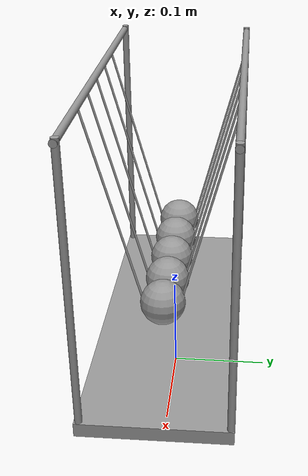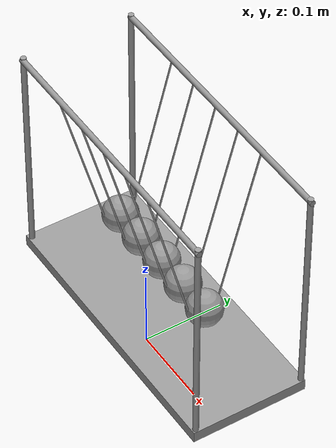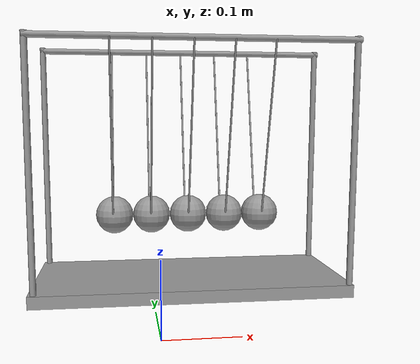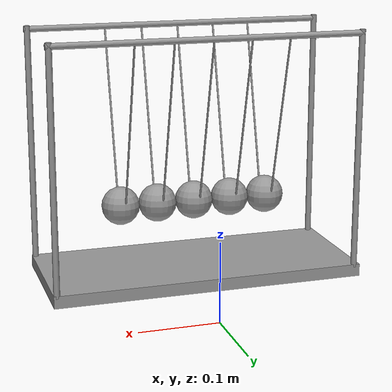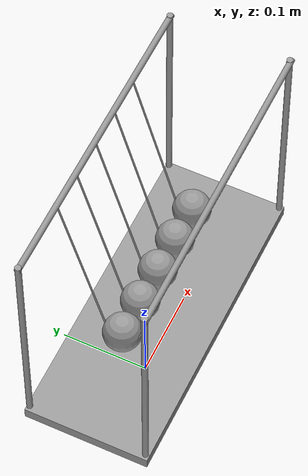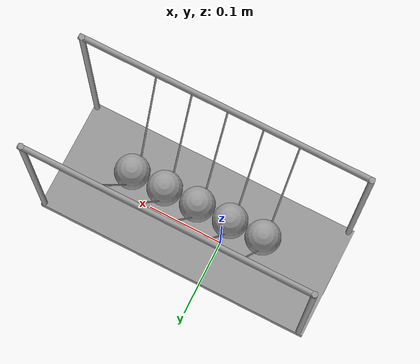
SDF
<?xml version='1.0'?>
<sdf version='1.6'>
  <model name='newtons_craddle_4'>
    <link name='link_0'>
      <inertial>
        <mass>5.36394</mass>
        <inertia>
          <ixx>0.00922062</ixx>
          <ixy>0</ixy>
          <ixz>0</ixz>
          <iyy>0.0559637</iyy>
          <iyz>0</iyz>
          <izz>0.06501</izz>
        </inertia>
        <pose frame=''>0 0 0 0 -0 0</pose>
      </inertial>
      <pose frame=''>0.032676 0.000288 0.076563 0 -0 0</pose>
      <gravity>1</gravity>
      <self_collide>1</self_collide>
      <kinematic>0</kinematic>
      <enable_wind>0</enable_wind>
      <visual name='ModelPreview_27::link_0::visual_2'>
        <pose frame=''>-0.170659 -0.067 0.14 0 0 -7.4e-05</pose>
        <geometry>
          <cylinder>
            <radius>0.00344767</radius>
            <length>0.27197</length>
          </cylinder>
        </geometry>
        <material>
          <lighting>1</lighting>
          <script>
            <uri>file://media/materials/scripts/gazebo.material</uri>
            <name>Gazebo/Grey</name>
          </script>
          <shader type='vertex'>
            <normal_map>__default__</normal_map>
          </shader>
          <ambient>0.3 0.3 0.3 1</ambient>
          <diffuse>0.7 0.7 0.7 1</diffuse>
          <specular>0.01 0.01 0.01 1</specular>
          <emissive>0 0 0 1</emissive>
        </material>
        <transparency>0</transparency>
        <cast_shadows>1</cast_shadows>
      </visual>
      <visual name='visual_0'>
        <pose frame=''>-0.170659 0.068338 0.14 0 0 -7.4e-05</pose>
        <geometry>
          <cylinder>
            <radius>0.00344767</radius>
            <length>0.27197</length>
          </cylinder>
        </geometry>
        <material>
          <lighting>1</lighting>
          <script>
            <uri>file://media/materials/scripts/gazebo.material</uri>
            <name>Gazebo/Grey</name>
          </script>
          <shader type='vertex'>
            <normal_map>__default__</normal_map>
          </shader>
          <ambient>0.3 0.3 0.3 1</ambient>
          <diffuse>0.7 0.7 0.7 1</diffuse>
          <specular>0.01 0.01 0.01 1</specular>
          <emissive>0 0 0 1</emissive>
        </material>
        <transparency>0</transparency>
        <cast_shadows>1</cast_shadows>
      </visual>
      <visual name='ModelPreview_27::link_0::visual_3'>
        <pose frame=''>0.173 -0.067 0.14 0 0 -7.4e-05</pose>
        <geometry>
          <cylinder>
            <radius>0.00344767</radius>
            <length>0.27197</length>
          </cylinder>
        </geometry>
        <material>
          <lighting>1</lighting>
          <script>
            <uri>file://media/materials/scripts/gazebo.material</uri>
            <name>Gazebo/Grey</name>
          </script>
          <shader type='vertex'>
            <normal_map>__default__</normal_map>
          </shader>
          <ambient>0.3 0.3 0.3 1</ambient>
          <diffuse>0.7 0.7 0.7 1</diffuse>
          <specular>0.01 0.01 0.01 1</specular>
          <emissive>0 0 0 1</emissive>
        </material>
        <transparency>0</transparency>
        <cast_shadows>1</cast_shadows>
      </visual>
      <visual name='ModelPreview_27::link_0::visual_4'>
        <pose frame=''>0.173 0.068338 0.14 0 0 -7.4e-05</pose>
        <geometry>
          <cylinder>
            <radius>0.00344767</radius>
            <length>0.27197</length>
          </cylinder>
        </geometry>
        <material>
          <lighting>1</lighting>
          <script>
            <uri>file://media/materials/scripts/gazebo.material</uri>
            <name>Gazebo/Grey</name>
          </script>
          <shader type='vertex'>
            <normal_map>__default__</normal_map>
          </shader>
          <ambient>0.3 0.3 0.3 1</ambient>
          <diffuse>0.7 0.7 0.7 1</diffuse>
          <specular>0.01 0.01 0.01 1</specular>
          <emissive>0 0 0 1</emissive>
        </material>
        <transparency>0</transparency>
        <cast_shadows>1</cast_shadows>
      </visual>
      <visual name='visual_4794398'>
        <pose frame=''>0.002 -0.067749 0.272068 2.4961 1.57079 2.49587</pose>
        <geometry>
          <cylinder>
            <radius>0.00344767</radius>
            <length>0.349533</length>
          </cylinder>
        </geometry>
        <material>
          <lighting>1</lighting>
          <script>
            <uri>file://media/materials/scripts/gazebo.material</uri>
            <name>Gazebo/Grey</name>
          </script>
          <shader type='pixel'>
            <normal_map>__default__</normal_map>
          </shader>
          <ambient>0.3 0.3 0.3 1</ambient>
          <diffuse>0.7 0.7 0.7 1</diffuse>
          <specular>0.01 0.01 0.01 1</specular>
          <emissive>0 0 0 1</emissive>
        </material>
        <transparency>0</transparency>
        <cast_shadows>1</cast_shadows>
      </visual>
      <visual name='visual'>
        <pose frame=''>0 0 0 0 -0 0</pose>
        <geometry>
          <box>
            <size>0.353565 0.142944 0.013965</size>
          </box>
        </geometry>
        <material>
          <lighting>1</lighting>
          <script>
            <uri>file://media/materials/scripts/gazebo.material</uri>
            <name>Gazebo/Grey</name>
          </script>
          <shader type='vertex'>
            <normal_map>__default__</normal_map>
          </shader>
          <emissive>0 0 0 1</emissive>
          <ambient>0.3 0.3 0.3 1</ambient>
          <diffuse>0.7 0.7 0.7 1</diffuse>
          <specular>0.01 0.01 0.01 1</specular>
        </material>
        <transparency>0</transparency>
        <cast_shadows>1</cast_shadows>
      </visual>
      <visual name='ModelPreview_30::link_0::visual_7'>
        <pose frame=''>0.002 0.068338 0.272068 2.4961 1.57079 2.49587</pose>
        <geometry>
          <cylinder>
            <radius>0.003448</radius>
            <length>0.349533</length>
          </cylinder>
        </geometry>
        <material>
          <lighting>1</lighting>
          <script>
            <uri>file://media/materials/scripts/gazebo.material</uri>
            <name>Gazebo/Grey</name>
          </script>
          <shader type='vertex'>
            <normal_map>__default__</normal_map>
          </shader>
          <emissive>0 0 0 1</emissive>
          <ambient>0.3 0.3 0.3 1</ambient>
          <diffuse>0.7 0.7 0.7 1</diffuse>
          <specular>0.01 0.01 0.01 1</specular>
        </material>
        <transparency>0</transparency>
        <cast_shadows>1</cast_shadows>
      </visual>
      <collision name='collision'>
        <laser_retro>0</laser_retro>
        <max_contacts>10</max_contacts>
        <pose frame=''>0 0 0 0 -0 0</pose>
        <geometry>
          <box>
            <size>0.353565 0.142944 0.013965</size>
          </box>
        </geometry>
        <surface>
          <friction>
            <ode>
              <mu>1</mu>
              <mu2>1</mu2>
              <fdir1>0 0 0</fdir1>
              <slip1>0</slip1>
              <slip2>0</slip2>
            </ode>
            <torsional>
              <coefficient>1</coefficient>
              <patch_radius>0</patch_radius>
              <surface_radius>0</surface_radius>
              <use_patch_radius>1</use_patch_radius>
              <ode>
                <slip>0</slip>
              </ode>
            </torsional>
          </friction>
          <bounce>
            <restitution_coefficient>0</restitution_coefficient>
            <threshold>1e+06</threshold>
          </bounce>
          <contact>
            <collide_without_contact>0</collide_without_contact>
            <collide_without_contact_bitmask>1</collide_without_contact_bitmask>
            <collide_bitmask>1</collide_bitmask>
            <ode>
              <soft_cfm>0</soft_cfm>
              <soft_erp>0.2</soft_erp>
              <kp>1e+13</kp>
              <kd>1</kd>
              <max_vel>0.01</max_vel>
              <min_depth>0</min_depth>
            </ode>
            <bullet>
              <split_impulse>1</split_impulse>
              <split_impulse_penetration_threshold>-0.01</split_impulse_penetration_threshold>
              <soft_cfm>0</soft_cfm>
              <soft_erp>0.2</soft_erp>
              <kp>1e+13</kp>
              <kd>1</kd>
            </bullet>
          </contact>
        </surface>
      </collision>
    </link>
    <link name='link_2'>
      <inertial>
        <mass>0.313289</mass>
        <inertia>
          <ixx>5.755e-05</ixx>
          <ixy>0</ixy>
          <ixz>0</ixz>
          <iyy>5.755e-05</iyy>
          <iyz>0</iyz>
          <izz>5.755e-05</izz>
        </inertia>
        <pose frame=''>0 0 0 0 -0 0</pose>
      </inertial>
      <pose frame=''>0.032676 0.000288 0.156014 0 -0 0</pose>
      <gravity>1</gravity>
      <self_collide>1</self_collide>
      <kinematic>0</kinematic>
      <enable_wind>0</enable_wind>
      <visual name='visual'>
        <pose frame=''>0 0 0 0 -0 0</pose>
        <geometry>
          <sphere>
            <radius>0.0214304</radius>
          </sphere>
        </geometry>
        <material>
          <lighting>1</lighting>
          <script>
            <uri>file://media/materials/scripts/gazebo.material</uri>
            <name>Gazebo/Grey</name>
          </script>
          <shader type='vertex'>
            <normal_map>__default__</normal_map>
          </shader>
          <emissive>0 0 0 1</emissive>
        </material>
        <transparency>0</transparency>
        <cast_shadows>1</cast_shadows>
      </visual>
      <visual name='visual_0'>
        <pose frame=''>-0.001604 -0.042749 0.08966 -0.262327 0 3.1413</pose>
        <geometry>
          <cylinder>
            <radius>0.0010189</radius>
            <length>0.212053</length>
          </cylinder>
        </geometry>
        <material>
          <lighting>1</lighting>
          <script>
            <uri>file://media/materials/scripts/gazebo.material</uri>
            <name>Gazebo/Grey</name>
          </script>
          <shader type='pixel'>
            <normal_map>__default__</normal_map>
          </shader>
          <ambient>0.3 0.3 0.3 1</ambient>
          <diffuse>0.7 0.7 0.7 1</diffuse>
          <specular>0.01 0.01 0.01 1</specular>
          <emissive>0 0 0 1</emissive>
        </material>
        <transparency>0</transparency>
        <cast_shadows>1</cast_shadows>
      </visual>
      <visual name='ModelPreview_33::link_2_clone_2::visual_2'>
        <pose frame=''>-0.001604 0.041 0.08966 0.262327 -0 3.1413</pose>
        <geometry>
          <cylinder>
            <radius>0.0010189</radius>
            <length>0.212053</length>
          </cylinder>
        </geometry>
        <material>
          <lighting>1</lighting>
          <script>
            <uri>file://media/materials/scripts/gazebo.material</uri>
            <name>Gazebo/Grey</name>
          </script>
          <shader type='pixel'>
            <normal_map>__default__</normal_map>
          </shader>
          <ambient>0.3 0.3 0.3 1</ambient>
          <diffuse>0.7 0.7 0.7 1</diffuse>
          <specular>0.01 0.01 0.01 1</specular>
          <emissive>0 0 0 1</emissive>
        </material>
        <transparency>0</transparency>
        <cast_shadows>1</cast_shadows>
      </visual>
      <collision name='collision'>
        <laser_retro>0</laser_retro>
        <max_contacts>10</max_contacts>
        <pose frame=''>0 0 0 0 -0 0</pose>
        <geometry>
          <sphere>
            <radius>0.02143</radius>
          </sphere>
        </geometry>
        <surface>
          <friction>
            <ode>
              <mu>1</mu>
              <mu2>1</mu2>
              <fdir1>0 0 0</fdir1>
              <slip1>0</slip1>
              <slip2>0</slip2>
            </ode>
            <torsional>
              <coefficient>1</coefficient>
              <patch_radius>0</patch_radius>
              <surface_radius>0</surface_radius>
              <use_patch_radius>1</use_patch_radius>
              <ode>
                <slip>0</slip>
              </ode>
            </torsional>
          </friction>
          <bounce>
            <restitution_coefficient>1</restitution_coefficient>
            <threshold>0</threshold>
          </bounce>
          <contact>
            <collide_without_contact>0</collide_without_contact>
            <collide_without_contact_bitmask>1</collide_without_contact_bitmask>
            <collide_bitmask>1</collide_bitmask>
            <ode>
              <soft_cfm>0</soft_cfm>
              <soft_erp>0.2</soft_erp>
              <kp>1e+13</kp>
              <kd>1</kd>
              <max_vel>100</max_vel>
              <min_depth>0.001</min_depth>
            </ode>
            <bullet>
              <split_impulse>1</split_impulse>
              <split_impulse_penetration_threshold>-0.01</split_impulse_penetration_threshold>
              <soft_cfm>0</soft_cfm>
              <soft_erp>0.2</soft_erp>
              <kp>1e+13</kp>
              <kd>1</kd>
            </bullet>
          </contact>
        </surface>
      </collision>
    </link>
    <link name='link_2_clone'>
      <inertial>
        <mass>0.313289</mass>
        <inertia>
          <ixx>5.755e-05</ixx>
          <ixy>0</ixy>
          <ixz>0</ixz>
          <iyy>5.755e-05</iyy>
          <iyz>0</iyz>
          <izz>5.755e-05</izz>
        </inertia>
        <pose frame=''>0 0 0 0 -0 0</pose>
      </inertial>
      <pose frame=''>-0.010185 0.000288 0.156014 0 -0 0</pose>
      <gravity>1</gravity>
      <self_collide>1</self_collide>
      <kinematic>0</kinematic>
      <enable_wind>0</enable_wind>
      <visual name='visual'>
        <pose frame=''>0 0 0 0 -0 0</pose>
        <geometry>
          <sphere>
            <radius>0.0214304</radius>
          </sphere>
        </geometry>
        <material>
          <lighting>1</lighting>
          <script>
            <uri>file://media/materials/scripts/gazebo.material</uri>
            <name>Gazebo/Grey</name>
          </script>
          <shader type='vertex'>
            <normal_map>__default__</normal_map>
          </shader>
          <emissive>0 0 0 1</emissive>
        </material>
        <transparency>0</transparency>
        <cast_shadows>1</cast_shadows>
      </visual>
      <visual name='visual_0'>
        <pose frame=''>-0.001604 -0.042749 0.08966 -0.262327 0 3.1413</pose>
        <geometry>
          <cylinder>
            <radius>0.0010189</radius>
            <length>0.212053</length>
          </cylinder>
        </geometry>
        <material>
          <lighting>1</lighting>
          <script>
            <uri>file://media/materials/scripts/gazebo.material</uri>
            <name>Gazebo/Grey</name>
          </script>
          <shader type='pixel'>
            <normal_map>__default__</normal_map>
          </shader>
          <ambient>0.3 0.3 0.3 1</ambient>
          <diffuse>0.7 0.7 0.7 1</diffuse>
          <specular>0.01 0.01 0.01 1</specular>
          <emissive>0 0 0 1</emissive>
        </material>
        <transparency>0</transparency>
        <cast_shadows>1</cast_shadows>
      </visual>
      <visual name='ModelPreview_33::link_2_clone_2::visual_2'>
        <pose frame=''>-0.001604 0.041 0.08966 0.262327 -0 3.1413</pose>
        <geometry>
          <cylinder>
            <radius>0.0010189</radius>
            <length>0.212053</length>
          </cylinder>
        </geometry>
        <material>
          <lighting>1</lighting>
          <script>
            <uri>file://media/materials/scripts/gazebo.material</uri>
            <name>Gazebo/Grey</name>
          </script>
          <shader type='pixel'>
            <normal_map>__default__</normal_map>
          </shader>
          <ambient>0.3 0.3 0.3 1</ambient>
          <diffuse>0.7 0.7 0.7 1</diffuse>
          <specular>0.01 0.01 0.01 1</specular>
          <emissive>0 0 0 1</emissive>
        </material>
        <transparency>0</transparency>
        <cast_shadows>1</cast_shadows>
      </visual>
      <collision name='collision'>
        <laser_retro>0</laser_retro>
        <max_contacts>10</max_contacts>
        <pose frame=''>0 0 0 0 -0 0</pose>
        <geometry>
          <sphere>
            <radius>0.02143</radius>
          </sphere>
        </geometry>
        <surface>
          <friction>
            <ode>
              <mu>1</mu>
              <mu2>1</mu2>
              <fdir1>0 0 0</fdir1>
              <slip1>0</slip1>
              <slip2>0</slip2>
            </ode>
            <torsional>
              <coefficient>1</coefficient>
              <patch_radius>0</patch_radius>
              <surface_radius>0</surface_radius>
              <use_patch_radius>1</use_patch_radius>
              <ode>
                <slip>0</slip>
              </ode>
            </torsional>
          </friction>
          <bounce>
            <restitution_coefficient>1</restitution_coefficient>
            <threshold>0</threshold>
          </bounce>
          <contact>
            <collide_without_contact>0</collide_without_contact>
            <collide_without_contact_bitmask>1</collide_without_contact_bitmask>
            <collide_bitmask>1</collide_bitmask>
            <ode>
              <soft_cfm>0</soft_cfm>
              <soft_erp>0.2</soft_erp>
              <kp>1e+13</kp>
              <kd>1</kd>
              <max_vel>100</max_vel>
              <min_depth>0.001</min_depth>
            </ode>
            <bullet>
              <split_impulse>1</split_impulse>
              <split_impulse_penetration_threshold>-0.01</split_impulse_penetration_threshold>
              <soft_cfm>0</soft_cfm>
              <soft_erp>0.2</soft_erp>
              <kp>1e+13</kp>
              <kd>1</kd>
            </bullet>
          </contact>
        </surface>
      </collision>
    </link>
    <link name='link_2_clone_0'>
      <inertial>
        <mass>0.313289</mass>
        <inertia>
          <ixx>5.755e-05</ixx>
          <ixy>0</ixy>
          <ixz>0</ixz>
          <iyy>5.755e-05</iyy>
          <iyz>0</iyz>
          <izz>5.755e-05</izz>
        </inertia>
        <pose frame=''>0 0 0 0 -0 0</pose>
      </inertial>
      <pose frame=''>-0.053046 0.000288 0.156014 0 -0 0</pose>
      <gravity>1</gravity>
      <self_collide>1</self_collide>
      <kinematic>0</kinematic>
      <enable_wind>0</enable_wind>
      <visual name='visual'>
        <pose frame=''>0 0 0 0 -0 0</pose>
        <geometry>
          <sphere>
            <radius>0.0214304</radius>
          </sphere>
        </geometry>
        <material>
          <lighting>1</lighting>
          <script>
            <uri>file://media/materials/scripts/gazebo.material</uri>
            <name>Gazebo/Grey</name>
          </script>
          <shader type='vertex'>
            <normal_map>__default__</normal_map>
          </shader>
          <emissive>0 0 0 1</emissive>
        </material>
        <transparency>0</transparency>
        <cast_shadows>1</cast_shadows>
      </visual>
      <visual name='visual_0'>
        <pose frame=''>-0.001604 -0.042749 0.08966 -0.262327 0 3.1413</pose>
        <geometry>
          <cylinder>
            <radius>0.0010189</radius>
            <length>0.212053</length>
          </cylinder>
        </geometry>
        <material>
          <lighting>1</lighting>
          <script>
            <uri>file://media/materials/scripts/gazebo.material</uri>
            <name>Gazebo/Grey</name>
          </script>
          <shader type='pixel'>
            <normal_map>__default__</normal_map>
          </shader>
          <ambient>0.3 0.3 0.3 1</ambient>
          <diffuse>0.7 0.7 0.7 1</diffuse>
          <specular>0.01 0.01 0.01 1</specular>
          <emissive>0 0 0 1</emissive>
        </material>
        <transparency>0</transparency>
        <cast_shadows>1</cast_shadows>
      </visual>
      <visual name='ModelPreview_33::link_2_clone_2::visual_2'>
        <pose frame=''>-0.001604 0.041 0.08966 0.262327 -0 3.1413</pose>
        <geometry>
          <cylinder>
            <radius>0.0010189</radius>
            <length>0.212053</length>
          </cylinder>
        </geometry>
        <material>
          <lighting>1</lighting>
          <script>
            <uri>file://media/materials/scripts/gazebo.material</uri>
            <name>Gazebo/Grey</name>
          </script>
          <shader type='pixel'>
            <normal_map>__default__</normal_map>
          </shader>
          <ambient>0.3 0.3 0.3 1</ambient>
          <diffuse>0.7 0.7 0.7 1</diffuse>
          <specular>0.01 0.01 0.01 1</specular>
          <emissive>0 0 0 1</emissive>
        </material>
        <transparency>0</transparency>
        <cast_shadows>1</cast_shadows>
      </visual>
      <collision name='collision'>
        <laser_retro>0</laser_retro>
        <max_contacts>10</max_contacts>
        <pose frame=''>0 0 0 0 -0 0</pose>
        <geometry>
          <sphere>
            <radius>0.02143</radius>
          </sphere>
        </geometry>
        <surface>
          <friction>
            <ode>
              <mu>1</mu>
              <mu2>1</mu2>
              <fdir1>0 0 0</fdir1>
              <slip1>0</slip1>
              <slip2>0</slip2>
            </ode>
            <torsional>
              <coefficient>1</coefficient>
              <patch_radius>0</patch_radius>
              <surface_radius>0</surface_radius>
              <use_patch_radius>1</use_patch_radius>
              <ode>
                <slip>0</slip>
              </ode>
            </torsional>
          </friction>
          <bounce>
            <restitution_coefficient>1</restitution_coefficient>
            <threshold>0</threshold>
          </bounce>
          <contact>
            <collide_without_contact>0</collide_without_contact>
            <collide_without_contact_bitmask>1</collide_without_contact_bitmask>
            <collide_bitmask>1</collide_bitmask>
            <ode>
              <soft_cfm>0</soft_cfm>
              <soft_erp>0.2</soft_erp>
              <kp>1e+13</kp>
              <kd>1</kd>
              <max_vel>100</max_vel>
              <min_depth>0.001</min_depth>
            </ode>
            <bullet>
              <split_impulse>1</split_impulse>
              <split_impulse_penetration_threshold>-0.01</split_impulse_penetration_threshold>
              <soft_cfm>0</soft_cfm>
              <soft_erp>0.2</soft_erp>
              <kp>1e+13</kp>
              <kd>1</kd>
            </bullet>
          </contact>
        </surface>
      </collision>
    </link>
    <link name='link_2_clone_1'>
      <inertial>
        <mass>0.313289</mass>
        <inertia>
          <ixx>5.755e-05</ixx>
          <ixy>0</ixy>
          <ixz>0</ixz>
          <iyy>5.755e-05</iyy>
          <iyz>0</iyz>
          <izz>5.755e-05</izz>
        </inertia>
        <pose frame=''>0 0 0 0 -0 0</pose>
      </inertial>
      <pose frame=''>0.075538 0.000285 0.156014 0 0 -7.6e-05</pose>
      <gravity>1</gravity>
      <self_collide>1</self_collide>
      <kinematic>0</kinematic>
      <enable_wind>0</enable_wind>
      <visual name='visual'>
        <pose frame=''>0 0 0 0 -0 0</pose>
        <geometry>
          <sphere>
            <radius>0.0214304</radius>
          </sphere>
        </geometry>
        <material>
          <lighting>1</lighting>
          <script>
            <uri>file://media/materials/scripts/gazebo.material</uri>
            <name>Gazebo/Grey</name>
          </script>
          <shader type='vertex'>
            <normal_map>__default__</normal_map>
          </shader>
          <emissive>0 0 0 1</emissive>
        </material>
        <transparency>0</transparency>
        <cast_shadows>1</cast_shadows>
      </visual>
      <visual name='visual_0'>
        <pose frame=''>-0.001604 -0.042749 0.08966 -0.262327 0 3.1413</pose>
        <geometry>
          <cylinder>
            <radius>0.0010189</radius>
            <length>0.212053</length>
          </cylinder>
        </geometry>
        <material>
          <lighting>1</lighting>
          <script>
            <uri>file://media/materials/scripts/gazebo.material</uri>
            <name>Gazebo/Grey</name>
          </script>
          <shader type='pixel'>
            <normal_map>__default__</normal_map>
          </shader>
          <ambient>0.3 0.3 0.3 1</ambient>
          <diffuse>0.7 0.7 0.7 1</diffuse>
          <specular>0.01 0.01 0.01 1</specular>
          <emissive>0 0 0 1</emissive>
        </material>
        <transparency>0</transparency>
        <cast_shadows>1</cast_shadows>
      </visual>
      <visual name='ModelPreview_33::link_2_clone_2::visual_2'>
        <pose frame=''>-0.001604 0.041 0.08966 0.262327 -0 3.1413</pose>
        <geometry>
          <cylinder>
            <radius>0.0010189</radius>
            <length>0.212053</length>
          </cylinder>
        </geometry>
        <material>
          <lighting>1</lighting>
          <script>
            <uri>file://media/materials/scripts/gazebo.material</uri>
            <name>Gazebo/Grey</name>
          </script>
          <shader type='pixel'>
            <normal_map>__default__</normal_map>
          </shader>
          <ambient>0.3 0.3 0.3 1</ambient>
          <diffuse>0.7 0.7 0.7 1</diffuse>
          <specular>0.01 0.01 0.01 1</specular>
          <emissive>0 0 0 1</emissive>
        </material>
        <transparency>0</transparency>
        <cast_shadows>1</cast_shadows>
      </visual>
      <collision name='collision'>
        <laser_retro>0</laser_retro>
        <max_contacts>10</max_contacts>
        <pose frame=''>0 0 0 0 -0 0</pose>
        <geometry>
          <sphere>
            <radius>0.02143</radius>
          </sphere>
        </geometry>
        <surface>
          <friction>
            <ode>
              <mu>1</mu>
              <mu2>1</mu2>
              <fdir1>0 0 0</fdir1>
              <slip1>0</slip1>
              <slip2>0</slip2>
            </ode>
            <torsional>
              <coefficient>1</coefficient>
              <patch_radius>0</patch_radius>
              <surface_radius>0</surface_radius>
              <use_patch_radius>1</use_patch_radius>
              <ode>
                <slip>0</slip>
              </ode>
            </torsional>
          </friction>
          <bounce>
            <restitution_coefficient>1</restitution_coefficient>
            <threshold>0</threshold>
          </bounce>
          <contact>
            <collide_without_contact>0</collide_without_contact>
            <collide_without_contact_bitmask>1</collide_without_contact_bitmask>
            <collide_bitmask>1</collide_bitmask>
            <ode>
              <soft_cfm>0</soft_cfm>
              <soft_erp>0.2</soft_erp>
              <kp>1e+13</kp>
              <kd>1</kd>
              <max_vel>100</max_vel>
              <min_depth>0.001</min_depth>
            </ode>
            <bullet>
              <split_impulse>1</split_impulse>
              <split_impulse_penetration_threshold>-0.01</split_impulse_penetration_threshold>
              <soft_cfm>0</soft_cfm>
              <soft_erp>0.2</soft_erp>
              <kp>1e+13</kp>
              <kd>1</kd>
            </bullet>
          </contact>
        </surface>
      </collision>
    </link>
    <link name='link_2_clone_2'>
      <inertial>
        <mass>0.313289</mass>
        <inertia>
          <ixx>5.755e-05</ixx>
          <ixy>0</ixy>
          <ixz>0</ixz>
          <iyy>5.755e-05</iyy>
          <iyz>0</iyz>
          <izz>5.755e-05</izz>
        </inertia>
        <pose frame=''>0 0 0 0 -0 0</pose>
      </inertial>
      <pose frame=''>0.118399 0.000281 0.156014 0 0 -7.6e-05</pose>
      <gravity>1</gravity>
      <self_collide>1</self_collide>
      <kinematic>0</kinematic>
      <enable_wind>0</enable_wind>
      <visual name='visual'>
        <pose frame=''>0 0 0 0 -0 0</pose>
        <geometry>
          <sphere>
            <radius>0.0214304</radius>
          </sphere>
        </geometry>
        <material>
          <lighting>1</lighting>
          <script>
            <uri>file://media/materials/scripts/gazebo.material</uri>
            <name>Gazebo/Grey</name>
          </script>
          <shader type='vertex'>
            <normal_map>__default__</normal_map>
          </shader>
          <emissive>0 0 0 1</emissive>
          <ambient>0.3 0.3 0.3 1</ambient>
          <diffuse>0.7 0.7 0.7 1</diffuse>
          <specular>0.01 0.01 0.01 1</specular>
        </material>
        <transparency>0</transparency>
        <cast_shadows>1</cast_shadows>
      </visual>
      <visual name='visual_0'>
        <pose frame=''>-0.001604 -0.042749 0.08966 -0.262327 0 3.1413</pose>
        <geometry>
          <cylinder>
            <radius>0.0010189</radius>
            <length>0.212053</length>
          </cylinder>
        </geometry>
        <material>
          <lighting>1</lighting>
          <script>
            <uri>file://media/materials/scripts/gazebo.material</uri>
            <name>Gazebo/Grey</name>
          </script>
          <shader type='pixel'>
            <normal_map>__default__</normal_map>
          </shader>
          <ambient>0.3 0.3 0.3 1</ambient>
          <diffuse>0.7 0.7 0.7 1</diffuse>
          <specular>0.01 0.01 0.01 1</specular>
          <emissive>0 0 0 1</emissive>
        </material>
        <transparency>0</transparency>
        <cast_shadows>1</cast_shadows>
      </visual>
      <visual name='ModelPreview_33::link_2_clone_2::visual_2'>
        <pose frame=''>-0.001604 0.041 0.08966 0.262327 -0 3.1413</pose>
        <geometry>
          <cylinder>
            <radius>0.0010189</radius>
            <length>0.212053</length>
          </cylinder>
        </geometry>
        <material>
          <lighting>1</lighting>
          <script>
            <uri>file://media/materials/scripts/gazebo.material</uri>
            <name>Gazebo/Grey</name>
          </script>
          <shader type='pixel'>
            <normal_map>__default__</normal_map>
          </shader>
          <ambient>0.3 0.3 0.3 1</ambient>
          <diffuse>0.7 0.7 0.7 1</diffuse>
          <specular>0.01 0.01 0.01 1</specular>
          <emissive>0 0 0 1</emissive>
        </material>
        <transparency>0</transparency>
        <cast_shadows>1</cast_shadows>
      </visual>
      <collision name='collision'>
        <laser_retro>0</laser_retro>
        <max_contacts>10</max_contacts>
        <pose frame=''>0 0 0 0 -0 0</pose>
        <geometry>
          <sphere>
            <radius>0.02143</radius>
          </sphere>
        </geometry>
        <surface>
          <friction>
            <ode>
              <mu>1</mu>
              <mu2>1</mu2>
              <fdir1>0 0 0</fdir1>
              <slip1>0</slip1>
              <slip2>0</slip2>
            </ode>
            <torsional>
              <coefficient>1</coefficient>
              <patch_radius>0</patch_radius>
              <surface_radius>0</surface_radius>
              <use_patch_radius>1</use_patch_radius>
              <ode>
                <slip>0</slip>
              </ode>
            </torsional>
          </friction>
          <bounce>
            <restitution_coefficient>1</restitution_coefficient>
            <threshold>0</threshold>
          </bounce>
          <contact>
            <collide_without_contact>0</collide_without_contact>
            <collide_without_contact_bitmask>1</collide_without_contact_bitmask>
            <collide_bitmask>1</collide_bitmask>
            <ode>
              <soft_cfm>0</soft_cfm>
              <soft_erp>0.2</soft_erp>
              <kp>1e+13</kp>
              <kd>1</kd>
              <max_vel>100</max_vel>
              <min_depth>0.001</min_depth>
            </ode>
            <bullet>
              <split_impulse>1</split_impulse>
              <split_impulse_penetration_threshold>-0.01</split_impulse_penetration_threshold>
              <soft_cfm>0</soft_cfm>
              <soft_erp>0.2</soft_erp>
              <kp>1e+13</kp>
              <kd>1</kd>
            </bullet>
          </contact>
        </surface>
      </collision>
    </link>
    <joint name='link_0_JOINT_0' type='revolute'>
      <parent>link_0</parent>
      <child>link_2</child>
      <pose frame=''>0 0 0.2 0 -0 0</pose>
      <axis>
        <xyz>0 1 0</xyz>
        <use_parent_model_frame>0</use_parent_model_frame>
        <limit>
          <lower>-1.79769e+308</lower>
          <upper>1.79769e+308</upper>
          <effort>-1</effort>
          <velocity>-1</velocity>
        </limit>
        <dynamics>
          <spring_reference>0</spring_reference>
          <spring_stiffness>0</spring_stiffness>
          <damping>0</damping>
          <friction>0</friction>
        </dynamics>
      </axis>
      <physics>
        <ode>
          <limit>
            <cfm>0</cfm>
            <erp>0.2</erp>
          </limit>
          <suspension>
            <cfm>0</cfm>
            <erp>0.2</erp>
          </suspension>
        </ode>
      </physics>
    </joint>
    <joint name='link_0_JOINT_1' type='revolute'>
      <parent>link_0</parent>
      <child>link_2_clone</child>
      <pose frame=''>0 0 0.2 0 -0 0</pose>
      <axis>
        <xyz>0 1 0</xyz>
        <use_parent_model_frame>0</use_parent_model_frame>
        <limit>
          <lower>-1.79769e+308</lower>
          <upper>1.79769e+308</upper>
          <effort>-1</effort>
          <velocity>-1</velocity>
        </limit>
        <dynamics>
          <spring_reference>0</spring_reference>
          <spring_stiffness>0</spring_stiffness>
          <damping>0</damping>
          <friction>0</friction>
        </dynamics>
      </axis>
      <physics>
        <ode>
          <limit>
            <cfm>0</cfm>
            <erp>0.2</erp>
          </limit>
          <suspension>
            <cfm>0</cfm>
            <erp>0.2</erp>
          </suspension>
        </ode>
      </physics>
    </joint>
    <joint name='link_0_JOINT_2' type='revolute'>
      <parent>link_0</parent>
      <child>link_2_clone_0</child>
      <pose frame=''>0 0 0.2 0 -0 0</pose>
      <axis>
        <xyz>0 1 0</xyz>
        <use_parent_model_frame>0</use_parent_model_frame>
        <limit>
          <lower>-1.79769e+308</lower>
          <upper>1.79769e+308</upper>
          <effort>-1</effort>
          <velocity>-1</velocity>
        </limit>
        <dynamics>
          <spring_reference>0</spring_reference>
          <spring_stiffness>0</spring_stiffness>
          <damping>0</damping>
          <friction>0</friction>
        </dynamics>
      </axis>
      <physics>
        <ode>
          <limit>
            <cfm>0</cfm>
            <erp>0.2</erp>
          </limit>
          <suspension>
            <cfm>0</cfm>
            <erp>0.2</erp>
          </suspension>
        </ode>
      </physics>
    </joint>
    <joint name='link_0_JOINT_3' type='revolute'>
      <parent>link_0</parent>
      <child>link_2_clone_1</child>
      <pose frame=''>0 0 0.2 0 -0 0</pose>
      <axis>
        <xyz>0 1 0</xyz>
        <use_parent_model_frame>0</use_parent_model_frame>
        <limit>
          <lower>-1.79769e+308</lower>
          <upper>1.79769e+308</upper>
          <effort>-1</effort>
          <velocity>-1</velocity>
        </limit>
        <dynamics>
          <spring_reference>0</spring_reference>
          <spring_stiffness>0</spring_stiffness>
          <damping>0</damping>
          <friction>0</friction>
        </dynamics>
      </axis>
      <physics>
        <ode>
          <limit>
            <cfm>0</cfm>
            <erp>0.2</erp>
          </limit>
          <suspension>
            <cfm>0</cfm>
            <erp>0.2</erp>
          </suspension>
        </ode>
      </physics>
    </joint>
    <joint name='link_0_JOINT_4' type='revolute'>
      <parent>link_0</parent>
      <child>link_2_clone_2</child>
      <pose frame=''>0 0 0.2 0 -0 0</pose>
      <axis>
        <xyz>0 1 0</xyz>
        <use_parent_model_frame>0</use_parent_model_frame>
        <limit>
          <lower>-1.79769e+308</lower>
          <upper>1.79769e+308</upper>
          <effort>-1</effort>
          <velocity>-1</velocity>
        </limit>
        <dynamics>
          <spring_reference>0</spring_reference>
          <spring_stiffness>0</spring_stiffness>
          <damping>0</damping>
          <friction>0</friction>
        </dynamics>
      </axis>
      <physics>
        <ode>
          <limit>
            <cfm>0</cfm>
            <erp>0.2</erp>
          </limit>
          <suspension>
            <cfm>0</cfm>
            <erp>0.2</erp>
          </suspension>
        </ode>
      </physics>
    </joint>
    <static>0</static>
    <allow_auto_disable>1</allow_auto_disable>
  </model>
</sdf>
